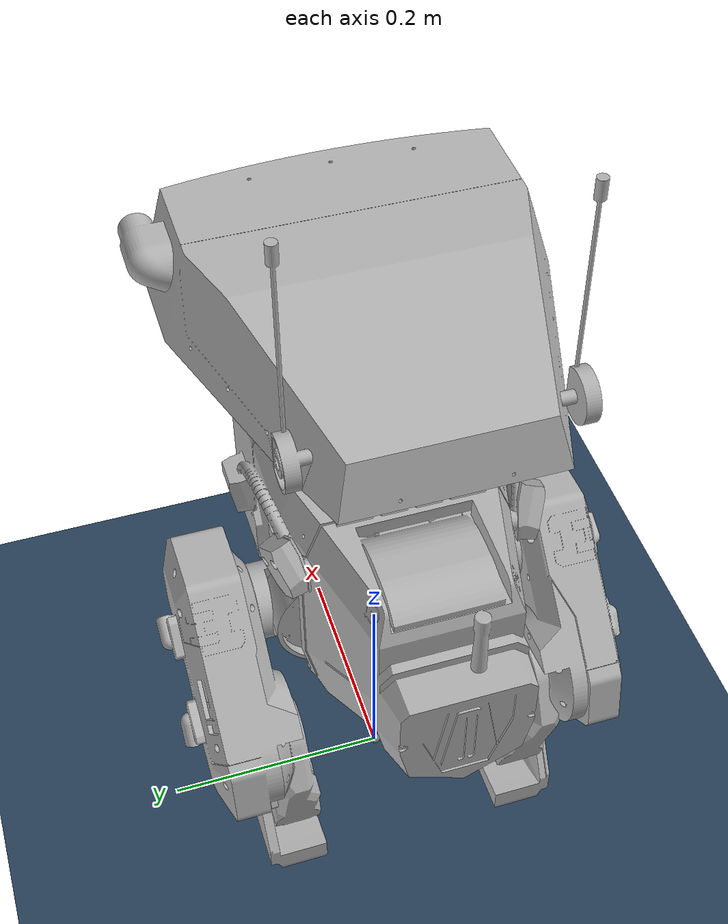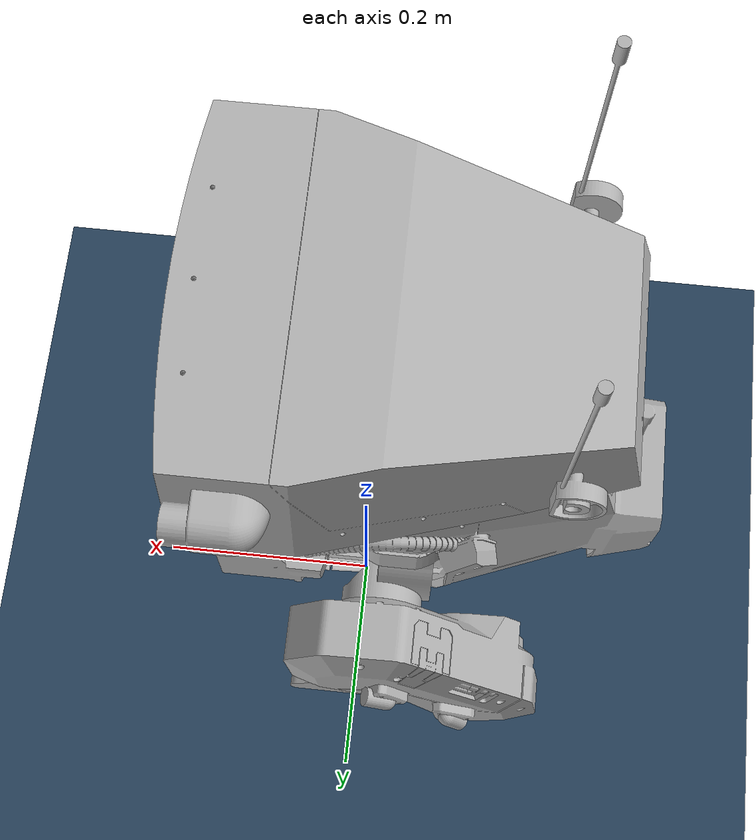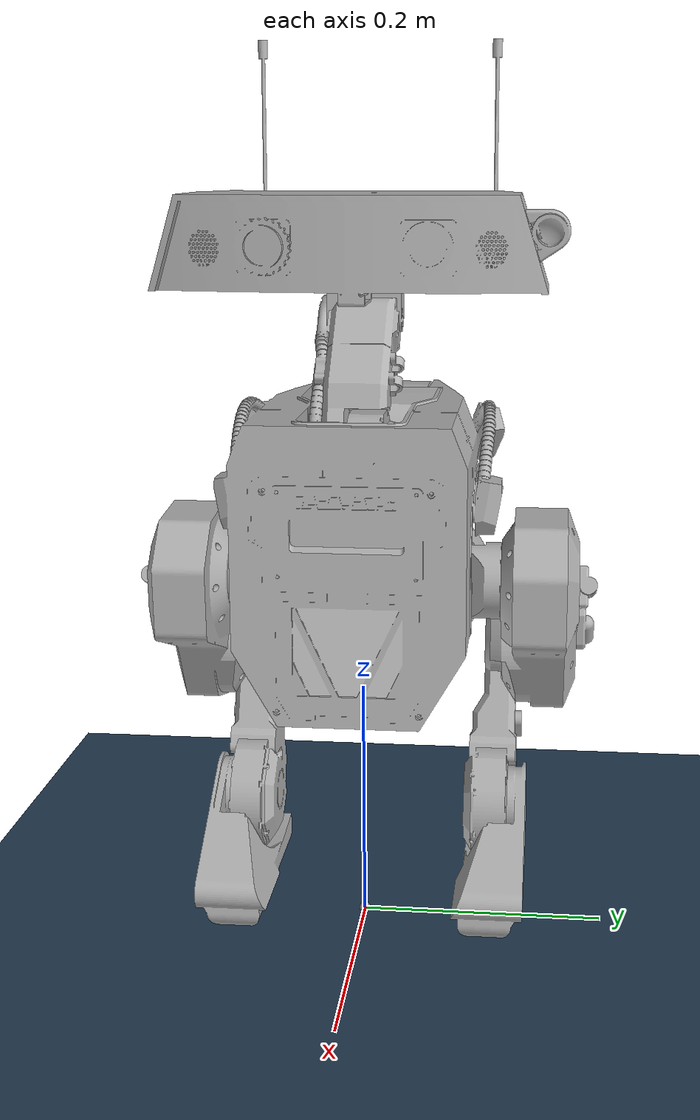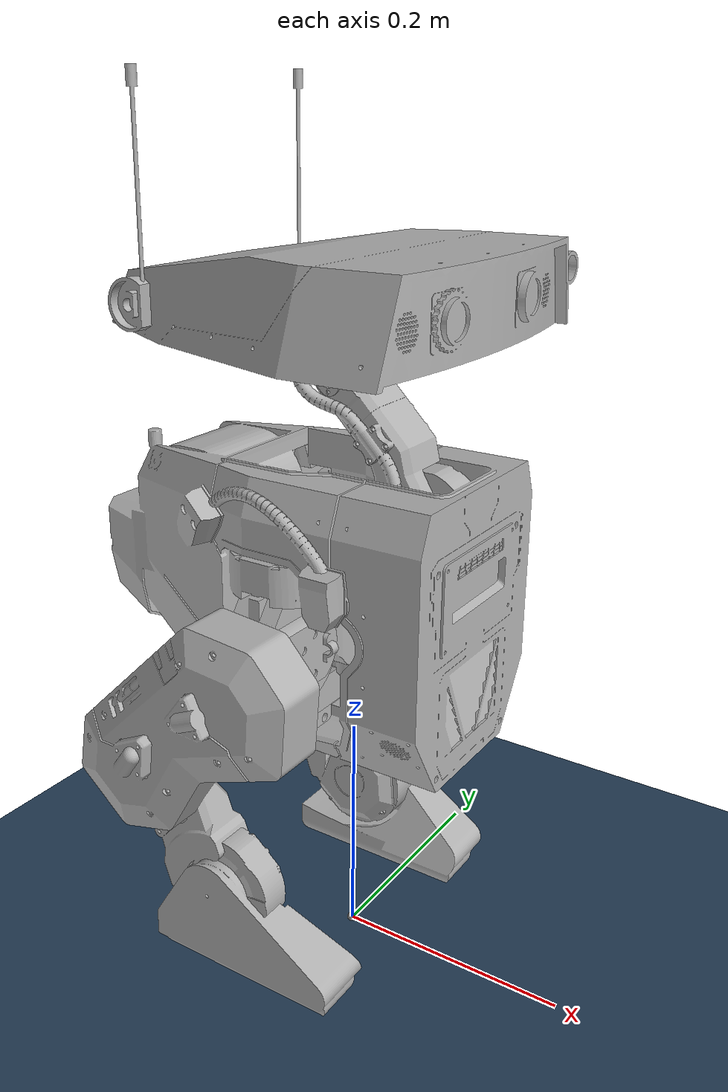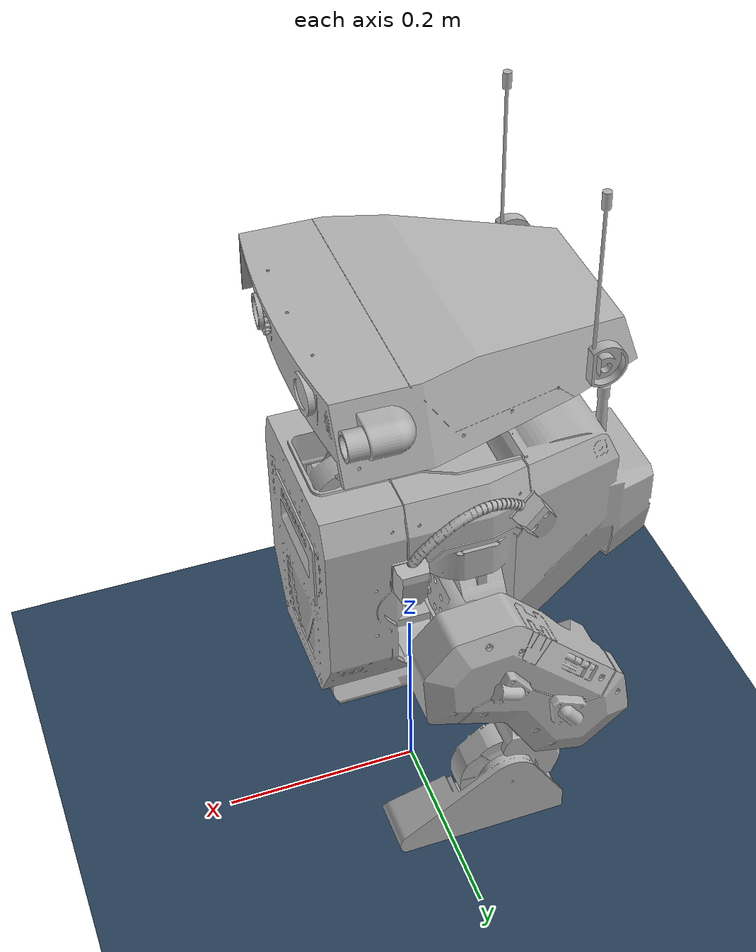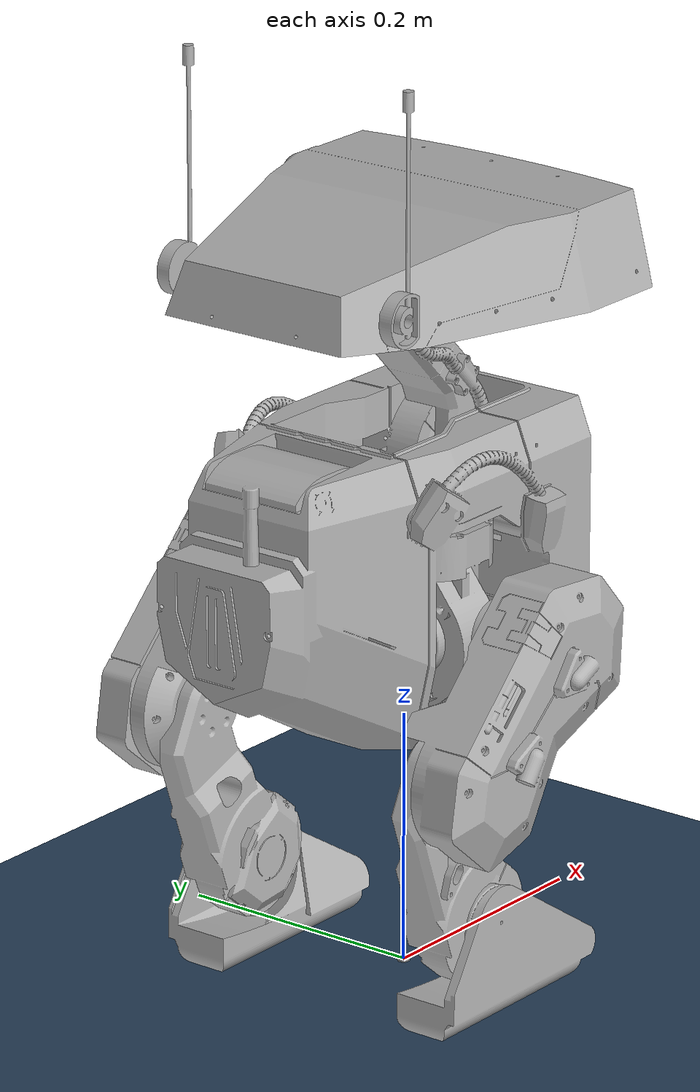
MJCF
<mujoco model="bdx scene">
  <include file="go_bdx.xml"/>
  <default>
    <!-- sliding friction, torsional friction, rolling friction -->
  </default>
  <visual>
    <headlight diffuse="0.6 0.6 0.6" ambient="0.3 0.3 0.3" specular="0 0 0" />
    <rgba haze="0.15 0.25 0.35 1" />
    <global azimuth="150" elevation="-20" />
  </visual>
  <asset>
    <texture type="skybox" builtin="gradient" rgb1="0.3 0.5 0.7" rgb2="0 0 0" width="512" height="3072" />
    <texture type="2d" name="groundplane" builtin="checker" mark="edge" rgb1="0.2 0.3 0.4" rgb2="0.1 0.2 0.3" markrgb="0.8 0.8 0.8" width="300" height="300" />
    <material name="groundplane" texture="groundplane" texuniform="true" texrepeat="5 5" reflectance="0.2" />
  </asset>
  <worldbody>
    <light pos="0 0 3" dir="0 0 -1" directional="false" />
    <body name="floor">
        <geom pos="0 0 0" name="floor" size="0 0 .125" type="plane" material="groundplane" conaffinity="1" contype="1" />
    </body>
  </worldbody>
</mujoco>

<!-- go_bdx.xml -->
<mujoco model="bdx">
  <compiler angle="radian" meshdir="meshes" texturedir="textures" autolimits="true"/>

  <option integrator="implicitfast"/>

  <default>
    <default class="bdx">
      <joint limited='true'/>
      <motor ctrllimited='true'/>
      <geom friction="1.0" margin="0.001" condim="1"/>
      <default class="leg-joint-param">
        <joint damping="0.01" frictionloss="0.1" armature="0.1" range="-0.785398 0.785398"/>
      </default>

      <default class="knee-joint-param">
        <joint damping="0.01" frictionloss="0.1" armature="0.1" range="-0.785398 0.785398"/>
      </default>

      <default class="ankle-joint-param">
        <joint damping="0.01" frictionloss="0.1" armature="0.1" range="-0.785398 0.785398"/>
      </default>

      <default class="neck-joint-param">
        <joint damping="0.01" frictionloss="0.1" armature="0.1" range="-0.785398 0.785398"/>
      </default>

      <default class="head-joint-param">
        <joint damping="0.01" frictionloss="0.1" armature="0.1" range="-0.785398 0.785398"/>
      </default>

      <default class="antenna-joint-param">
        <joint damping="0.01" frictionloss="0.01" armature="0.01" range="-0.785398 0.785398"/>
      </default>
    </default>
  </default>

  <asset>
    <mesh name="pelvis" file="pelvis.stl" scale="0.001 0.001 0.001"/>
    <mesh name="left_foot" file="left_foot.stl" scale="0.001 0.001 0.001"/>
    <mesh name="left_shin" file="left_shin.stl" scale="0.001 0.001 0.001"/>
    <mesh name="left_thigh" file="left_thigh.stl" scale="0.001 0.001 0.001"/>
    <mesh name="left_hip" file="left_hip.stl" scale="0.001 0.001 0.001"/>
    <mesh name="left_hip_rotation" file="left_hip_rotation.stl" scale="0.001 0.001 0.001"/>
    <mesh name="right_foot" file="right_foot.stl" scale="0.001 0.001 0.001"/>
    <mesh name="right_shin" file="right_shin.stl" scale="0.001 0.001 0.001"/>
    <mesh name="right_thigh" file="right_thigh.stl" scale="0.001 0.001 0.001"/>
    <mesh name="right_hip" file="right_hip.stl" scale="0.001 0.001 0.001"/>
    <mesh name="right_hip_rotation" file="right_hip_rotation.stl" scale="0.001 0.001 0.001"/>
    <mesh name="ear_right" file="ear_right.stl" scale="0.001 0.001 0.001"/>
    <mesh name="ear_left" file="ear_left.stl" scale="0.001 0.001 0.001"/>
    <mesh name="head_body_roll" file="head_body_roll.stl" scale="0.001 0.001 0.001"/>
    <mesh name="head_body_yaw" file="head_body_yaw.stl" scale="0.001 0.001 0.001"/>
    <mesh name="head_body_pitch" file="head_body_pitch.stl" scale="0.001 0.001 0.001"/>
    <mesh name="neck" file="neck.stl" scale="0.001 0.001 0.001"/>
  </asset>
  <worldbody>
    <light name="spotlight" mode="targetbodycom" target="bdx" pos="0 -1 2"/>
    <body name="bdx">
      <camera name="track" pos="0 -3 1" zaxis="0 -1 0.5" mode="track"/>
      <freejoint/>
      <body name="pelvis" pos="0 0 0" childclass="bdx">
        <geom type="mesh" rgba="0.7 0.7 0.7 1" mesh="pelvis"/>
        <inertial pos="-0.05 0 0.32" quat="0 0 0 1" mass="5.713" diaginertia="0.0201691 0.0431684 0.0371809"/>
        <site name="imu" pos="0 0 0"/>
        <body name="left_hip_rotation" pos="-0.033111 0.046658 0.363959">
          <inertial pos="-0.00508397 0.00309242 -0.0631043" quat="0.999573 0.0213461 0.0199274 0.00141326" mass="0.633" diaginertia="0.000533636 0.0004183 0.000196963"/>
          <joint class="leg-joint-param" name="left_hip_yaw" pos="0 0 0" axis="0 0 -1"/>
          <geom pos="0.033111 -0.046658 -0.363959" type="mesh" rgba="0.7 0.7 0.7 1" mesh="left_hip_rotation"/>
          <body name="left_hip" pos="-0.0073 0.00275 -0.076">
            <inertial pos="0.0189112 0.0234713 0.000362123" quat="0.704899 0.708795 -0.00571972 -0.0263546" mass="0.633" diaginertia="0.000149816 0.000136791 0.0000505934"/>
            <joint class="leg-joint-param" name="left_hip_roll" pos="0 0 0" axis="1 0 0"/>
            <geom pos="0.040411 -0.049408 -0.287959" quat="1 0 0 0" type="mesh" rgba="0.7 0.7 0.7 1" mesh="left_hip"/>
            <body name="left_thigh" pos="0.017466 0.069601 0.000785">
              <inertial pos="-0.0341087 0.0267727 -0.0344467" quat="0.633403 0.297734 0.294346 0.650781" mass="0.633" diaginertia="0.00236734 0.00206723 0.000603735"/>
              <joint class="leg-joint-param" name="left_hip_pitch" pos="0 0 0" axis="0 1 0"/>
              <geom pos="0.022945 -0.119009 -0.288744" quat="1 0 0 0" type="mesh" rgba="0.7 0.7 0.7 1" mesh="left_thigh"/>
              <body name="left_shin" pos="-0.079306 0 -0.077708">
                <inertial pos="0.0222946 -0.0149367 -0.0900588" quat="0.708097 -0.166338 -0.130184 0.673783" mass="0.633" diaginertia="0.00117688 0.00102167 0.000215741"/>
                <joint class="leg-joint-param" name="left_knee" pos="0 0 0" axis="0 -1 0"/>
                <geom pos="0.102251 -0.119009 -0.211036" quat="1 0 0 0" type="mesh" rgba="0.7 0.7 0.7 1" mesh="left_shin"/>
                <body name="left_foot_link" pos="0.045 -0.0152 -0.13">
                  <inertial pos="0.0317645 0.00793337 -0.0421515" quat="-0.4970389 -0.5029436 -0.4970389 -0.5029436" mass="0.678" diaginertia="0.00103795 0.000833717 0.000325637"/>
                  <joint class="ankle-joint-param" name="left_ankle" pos="0 0 0" axis="0 1 0"/>
                  <geom pos="0.057251 -0.103809 -0.081036" quat="1 0 0 0" type="mesh" rgba="0.7 0.7 0.7 1" mesh="left_foot"/>
                </body>
              </body>
            </body>
          </body>
        </body>
        <body name="neck" pos="0.056339 0.0119 0.395171">
          <inertial pos="-0.0240043 -0.0164112 0.050435" quat="0.415022 -0.234316 -0.0652626 0.876694" mass="0.633" diaginertia="0.000651818 0.000640093 0.000104188"/>
          <joint class="neck-joint-param" name="neck_pitch" pos="0 0 0" axis="0 -1 0"/>
          <geom pos="-0.056339 -0.0119 -0.395171" quat="1 0 0 0" type="mesh" rgba="0.7 0.7 0.7 1" mesh="neck"/>
          <body name="head_body_pitch" pos="-0.065022 -0.01175 0.11088">
            <inertial pos="-0.0129682 -0.00171465 0.0277559" quat="0.975914 -0.0920927 -0.197246 0.0143444" mass="0.2" diaginertia="0.0000404789 0.000034123 0.0000159981"/>
            <joint class="head-joint-param" name="head_pitch" pos="0 0 0" axis="0 -1 0"/>
            <geom pos="0.008683 -0.00015 -0.506051" type="mesh" rgba="0.7 0.7 0.7 1" mesh="head_body_pitch"/>
            <body name="head_body_yaw" pos="0.000299 0.0007 0.02897">
              <inertial pos="0.00785461 -1.46108e-06 0.0225451" quat="0.541584 0.454629 0.454629 0.541584" mass="0.2" diaginertia="0.0000559 0.0000550027 0.0000215973"/>
              <joint class="head-joint-param" name="head_yaw" pos="0 0 0" axis="0 0 1"/>
              <geom pos="0.008384 -0.00085 -0.535021" quat="1 0 0 0" type="mesh" rgba="0.7 0.7 0.7 1" mesh="head_body_yaw"/>
              <body name="head_body_roll" pos="0.039892 0 0.02715">
                <inertial pos="-0.0339687 0.00148766 0.00242765" quat="1 0 1 0" mass="0.4" diaginertia="0.00201812 0.00118005 0.00103248"/>
                <joint class="head-joint-param" name="head_roll" pos="0 0 0" axis="1 0 0"/>
                <geom pos="-0.031508 -0.00085 -0.562171" quat="1 0 0 0" type="mesh" rgba="0.7 0.7 0.7 1" mesh="head_body_roll"/>
                <body name="ear_left" pos="-0.16665 0.0683 0.001231">
                  <inertial pos="0.000161565 0.0247291 0.016145" quat="0.998004 -0.0231719 0.0382937 0.0445513" mass="0.0964016" diaginertia="0.0000208107 0.0000200388 0.00000195059"/>
                  <joint class="antenna-joint-param" name="left_antenna" pos="0 0 0" axis="0 -1 0"/>
                  <geom pos="0.135142 -0.06915 -0.563402" quat="1 0 0 0" type="mesh" rgba="0.7 0.7 0.7 1" mesh="ear_left"/>
                </body>
                <body name="ear_right" pos="-0.16665 -0.0697 0.001231">
                  <inertial pos="0.000161565 -0.0247291 0.016145" quat="0.998004 0.0231719 0.0382937 -0.0445513" mass="0.0964016" diaginertia="0.0000208107 0.0000200388 0.00000195059"/>
                  <joint class="antenna-joint-param" name="right_antenna" pos="0 0 0" axis="0 -1 0"/>
                  <geom pos="0.135142 0.06885 -0.563402" type="mesh" rgba="0.7 0.7 0.7 1" mesh="ear_right"/>
                </body>
              </body>
            </body>
          </body>
        </body>
        <body name="right_hip_rotation" pos="-0.033111 -0.046658 0.363959">
          <inertial pos="-0.00508397 -0.00309242 -0.0631043" quat="0.999573 -0.0213461 0.0199274 -0.00141326" mass="0.633" diaginertia="0.000533636 0.0004183 0.000196963"/>
          <joint class="leg-joint-param" name="right_hip_yaw" pos="0 0 0" axis="0 0 -1"/>
          <geom pos="0.033111 0.046658 -0.363959" type="mesh" rgba="0.7 0.7 0.7 1" mesh="right_hip_rotation"/>
          <body name="right_hip" pos="-0.0073 -0.00275 -0.076">
            <inertial pos="0.0189112 -0.0234713 0.000362123" quat="0.708795 0.704899 0.0263546 0.00571972" mass="0.633" diaginertia="0.000149816 0.000136791 0.0000505934"/>
            <joint class="leg-joint-param" name="right_hip_roll" pos="0 0 0" axis="1 0 0"/>
            <geom pos="0.040411 0.049408 -0.287959" quat="1 0 0 0" type="mesh" rgba="0.7 0.7 0.7 1" mesh="right_hip"/>
            <body name="right_thigh" pos="0.017466 -0.069601 0.000785">
              <inertial pos="-0.0341087 -0.0267727 -0.0344467" quat="0.650781 0.294346 0.297734 0.633403" mass="0.633" diaginertia="0.00236734 0.00206723 0.000603735"/>
              <joint class="leg-joint-param" name="right_hip_pitch" pos="0 0 0" axis="0 -1 0"/>
              <geom pos="0.022945 0.119009 -0.288744" quat="1 0 0 0" type="mesh" rgba="0.7 0.7 0.7 1" mesh="right_thigh"/>
              <body name="right_shin" pos="-0.079306 0 -0.077708">
                <inertial pos="0.0222946 0.0149367 -0.0900588" quat="0.673783 -0.130184 -0.166338 0.708097" mass="0.633" diaginertia="0.00117688 0.00102167 0.000215741"/>
                <joint class="leg-joint-param" name="right_knee" pos="0 0 0" axis="0 1 0"/>
                <geom pos="0.102251 0.119009 -0.211036" quat="1 0 0 0" type="mesh" rgba="0.7 0.7 0.7 1" mesh="right_shin"/>
                <body name="right_foot_link" pos="0.045 0.0152 -0.13">
                  <inertial pos="0.0317645 -0.00793337 -0.0421515" quat="0.5014523 0.506725 0.4864445 0.5051209" mass="0.678" diaginertia="0.00103795 0.000833717 0.000325637"/>
                  <joint class="ankle-joint-param" name="right_ankle" pos="0 0 0" axis="0 -1 0"/>
                  <geom pos="0.057251 0.103809 -0.081036" quat="1 0 0 0" type="mesh" rgba="0.7 0.7 0.7 1" mesh="right_foot"/>
                </body>
              </body>
            </body>
          </body>
        </body>
      </body>
    </body>
  </worldbody>
  <contact>
    <exclude body1="pelvis" body2="right_hip"/>
    <exclude body1="pelvis" body2="left_hip"/>
    <exclude body1="pelvis" body2="left_thigh"/>
    <exclude body1="pelvis" body2="right_thigh"/>
    <exclude body1="neck" body2="head_body_pitch"/>
    <exclude body1="neck" body2="head_body_yaw"/>
    <exclude body1="neck" body2="head_body_roll"/>
    <exclude body1="head_body_pitch" body2="head_body_roll"/>
    <exclude body1="head_body_yaw" body2="head_body_roll"/>
  </contact>
  <actuator>
    <position kp="40" kv="1.3" name="left_hip_yaw" joint="left_hip_yaw" gear="1" forcerange="-23.7 23.7" ctrlrange="-30 30"/>
    <position kp="40" kv="1.3" name="left_hip_roll" joint="left_hip_roll" gear="1" forcerange="-23.7 23.7" ctrlrange="-30 30"/>
    <position kp="40" kv="1.3" name="left_hip_pitch" joint="left_hip_pitch" gear="1" forcerange="-23.7 23.7" ctrlrange="-30 30"/>
    <position kp="35" kv="1.3" name="left_knee" joint="left_knee" gear="1" forcerange="-23.7 23.7" ctrlrange="-30 30"/>
    <position kp="30" kv="1.3" name="left_ankle" joint="left_ankle" gear="1" forcerange="-23.7 23.7" ctrlrange="-30 30"/>
    <position kp="40" kv="1.3" name="neck_pitch" joint="neck_pitch" gear="1" forcerange="-23.7 23.7" ctrlrange="-30 30"/>
    <position kp="15" kv="1.0" name="head_pitch" joint="head_pitch" gear="1" forcerange="-7.3 7.3" ctrlrange="-5.55 5.55"/>
    <position kp="15" kv="1.0" name="head_yaw" joint="head_yaw" gear="1" forcerange="-7.3 7.3" ctrlrange="-5.55 5.55"/>
    <position kp="15" kv="1.0" name="head_roll" joint="head_roll" gear="1" forcerange="-7.3 7.3" ctrlrange="-5.55 5.55"/>
    <position kp="3" kv="0.2" name="left_antenna" joint="left_antenna" gear="1" forcerange="-0.2943 0.2943" ctrlrange="-13.62 13.62"/>
    <position kp="3" kv="0.2" name="right_antenna" joint="right_antenna" gear="1" forcerange="-0.2943 0.2943" ctrlrange="-13.62 13.62"/>
    <position kp="40" kv="1.3" name="right_hip_yaw" joint="right_hip_yaw" gear="1" forcerange="-23.7 23.7" ctrlrange="-30 30"/>
    <position kp="40" kv="1.3" name="right_hip_roll" joint="right_hip_roll" gear="1" forcerange="-23.7 23.7" ctrlrange="-30 30"/>
    <position kp="40" kv="1.3" name="right_hip_pitch" joint="right_hip_pitch" gear="1" forcerange="-23.7 23.7" ctrlrange="-30 30"/>
    <position kp="35" kv="1.3" name="right_knee" joint="right_knee" gear="1" forcerange="-23.7 23.7" ctrlrange="-30 30"/>
    <position kp="30" kv="1.6" name="right_ankle" joint="right_ankle" gear="1" forcerange="-23.7 23.7" ctrlrange="-30 30"/>
  </actuator>
  <sensor>
    <framequat name='orientation' objtype='site' noise='0.001' objname='imu'/>
    <framepos name='position' objtype='site' noise='0.001' objname='imu'/>
    <gyro name='angular-velocity' site='imu' noise='0.005' cutoff='34.9'/>
    <velocimeter name='linear-velocity' site='imu' noise='0.001' cutoff='30'/>
    <accelerometer name='linear-acceleration' site='imu' noise='0.005' cutoff='157'/>
    <magnetometer name='magnetometer' site='imu'/>
  </sensor>
</mujoco>
